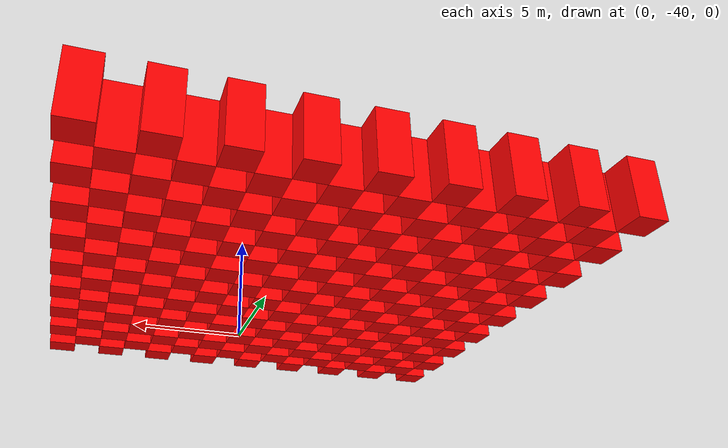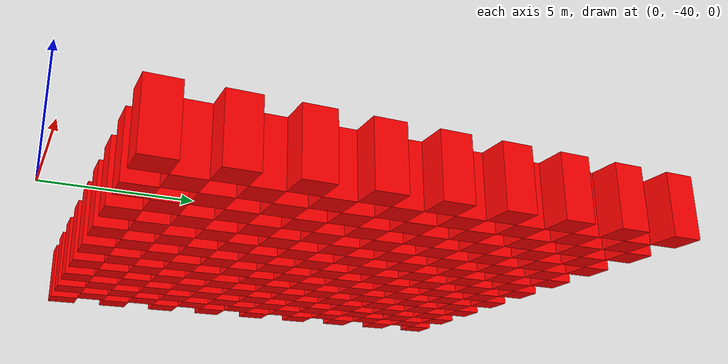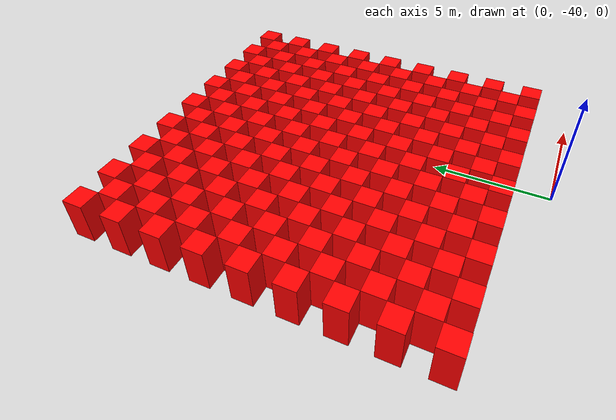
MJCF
<mujoco model="random_box_terrain">
    <compiler angle="degree" coordinate="local"/>
    <option timestep="0.01" gravity="0 0 -9.81" integrator="RK4"/>

    <asset>
        <texture type="2d" name="Plastic006_color"      file="../../textures/Plastic006_2K-PNG/Plastic006_2K-PNG_Color.png"/>
        <texture type="2d" name="Plastic006_roughness"  file="../../textures/Plastic006_2K-PNG/Plastic006_2K-PNG_Roughness.png"/>
        <texture type="2d" name="Plastic006_normal"     file="../../textures/Plastic006_2K-PNG/Plastic006_2K-PNG_NormalDX.png"/>

        <material name="pbr_plastic_black" metallic ="0.05" roughness="1.0" rgba="1 0 0 1.0">
        <layer role="rgb"        texture="Plastic006_color"/>
        <layer role="normal"     texture="Plastic006_normal"/>
        <layer role="roughness"  texture="Plastic006_roughness"/>
        </material>

        <texture type="2d" name="Plastic013A_color"      file="../../textures/Plastic013A_2K-PNG/Plastic013A_2K-PNG_Color.png"/>
        <texture type="2d" name="Plastic013A_roughness"  file="../../textures/Plastic013A_2K-PNG/Plastic013A_2K-PNG_Roughness.png"/>
        <texture type="2d" name="Plastic013A_normal"     file="../../textures/Plastic013A_2K-PNG/Plastic013A_2K-PNG_NormalDX.png"/>

        <material name="pbr_plastic_white" metallic ="0.05" roughness="1.0" rgba="1 0 0 1.0">
        <layer role="rgb"        texture="Plastic013A_color"/>
        <layer role="normal"     texture="Plastic013A_normal"/>
        <layer role="roughness"  texture="Plastic013A_roughness"/>
        </material>

        <texture type="2d" name="Plastic010_color"      file="../../textures/Plastic010_2K-PNG/Plastic010_2K-PNG_Color.png"/>
        <texture type="2d" name="Plastic010_roughness"  file="../../textures/Plastic010_2K-PNG/Plastic010_2K-PNG_Roughness.png"/>
        <texture type="2d" name="Plastic010_normal"     file="../../textures/Plastic010_2K-PNG/Plastic010_2K-PNG_NormalDX.png"/>

        <material name="pbr_plastic_gray" metallic ="0.05" roughness="1.0" rgba="1 0 0 1.0">
        <layer role="rgb"        texture="Plastic010_color"/>
        <layer role="normal"     texture="Plastic010_normal"/>
        <layer role="roughness"  texture="Plastic010_roughness"/>
        </material>
    </asset>
    <worldbody>
        <body name="offset" pos="0 -30 0">
            <body name="terrain" pos="0 0 0.0">
                <geom type="box" pos="-8.0 -8.0 -1.0" size="0.5 0.5 1.025"   material="pbr_plastic_gray"/>
                <geom type="box" pos="-6.0 -8.0 -1.0" size="0.5 0.5 1.025"   material="pbr_plastic_white"/>
                <geom type="box" pos="-4.0 -8.0 -1.0" size="0.5 0.5 1.025"   material="pbr_plastic_gray"/>
                <geom type="box" pos="-2.0 -8.0 -1.0" size="0.5 0.5 1.025"   material="pbr_plastic_white"/>
                <geom type="box" pos="0.0 -8.0 -1.0" size="0.5 0.5 1.025"   material="pbr_plastic_gray"/>
                <geom type="box" pos="2.0 -8.0 -1.0" size="0.5 0.5 1.025"   material="pbr_plastic_white"/>
                <geom type="box" pos="4.0 -8.0 -1.0" size="0.5 0.5 1.025"   material="pbr_plastic_gray"/>
                <geom type="box" pos="6.0 -8.0 -1.0" size="0.5 0.5 1.025"   material="pbr_plastic_white"/>
                <geom type="box" pos="8.0 -8.0 -1.0" size="0.5 0.5 1.025"   material="pbr_plastic_gray"/>

                <geom type="box" pos="-7.0 -7.0 -1.0" size="0.5 0.5 1.025"   material="pbr_plastic_gray"/>
                <geom type="box" pos="-5.0 -7.0 -1.0" size="0.5 0.5 1.025"   material="pbr_plastic_white"/>
                <geom type="box" pos="-3.0 -7.0 -1.0" size="0.5 0.5 1.025"   material="pbr_plastic_gray"/>
                <geom type="box" pos="-1.0 -7.0 -1.0" size="0.5 0.5 1.025"   material="pbr_plastic_white"/>
                <geom type="box" pos="1.0 -7.0 -1.0" size="0.5 0.5 1.025"   material="pbr_plastic_gray"/>
                <geom type="box" pos="3.0 -7.0 -1.0" size="0.5 0.5 1.025"   material="pbr_plastic_white"/>
                <geom type="box" pos="5.0 -7.0 -1.0" size="0.5 0.5 1.025"   material="pbr_plastic_gray"/>
                <geom type="box" pos="7.0 -7.0 -1.0" size="0.5 0.5 1.025"   material="pbr_plastic_white"/>

                <geom type="box" pos="-8.0 -6.0 -1.0" size="0.5 0.5 1.025"   material="pbr_plastic_white"/>
                <geom type="box" pos="-6.0 -6.0 -1.0" size="0.5 0.5 1.025"   material="pbr_plastic_gray"/>
                <geom type="box" pos="-4.0 -6.0 -1.0" size="0.5 0.5 1.025"   material="pbr_plastic_white"/>
                <geom type="box" pos="-2.0 -6.0 -1.0" size="0.5 0.5 1.025"   material="pbr_plastic_gray"/>
                <geom type="box" pos="0.0 -6.0 -1.0" size="0.5 0.5 1.025"   material="pbr_plastic_white"/>
                <geom type="box" pos="2.0 -6.0 -1.0" size="0.5 0.5 1.025"   material="pbr_plastic_gray"/>
                <geom type="box" pos="4.0 -6.0 -1.0" size="0.5 0.5 1.025"   material="pbr_plastic_white"/>
                <geom type="box" pos="6.0 -6.0 -1.0" size="0.5 0.5 1.025"   material="pbr_plastic_gray"/>
                <geom type="box" pos="8.0 -6.0 -1.0" size="0.5 0.5 1.025"   material="pbr_plastic_white"/>

                <geom type="box" pos="-7.0 -5.0 -1.0" size="0.5 0.5 1.025"   material="pbr_plastic_gray"/>
                <geom type="box" pos="-5.0 -5.0 -1.0" size="0.5 0.5 1.025"   material="pbr_plastic_white"/>
                <geom type="box" pos="-3.0 -5.0 -1.0" size="0.5 0.5 1.025"   material="pbr_plastic_gray"/>
                <geom type="box" pos="-1.0 -5.0 -1.0" size="0.5 0.5 1.025"   material="pbr_plastic_white"/>
                <geom type="box" pos="1.0 -5.0 -1.0" size="0.5 0.5 1.025"   material="pbr_plastic_gray"/>
                <geom type="box" pos="3.0 -5.0 -1.0" size="0.5 0.5 1.025"   material="pbr_plastic_white"/>
                <geom type="box" pos="5.0 -5.0 -1.0" size="0.5 0.5 1.025"   material="pbr_plastic_gray"/>
                <geom type="box" pos="7.0 -5.0 -1.0" size="0.5 0.5 1.025"   material="pbr_plastic_white"/>

                <geom type="box" pos="-8.0 -4.0 -1.0" size="0.5 0.5 1.025"   material="pbr_plastic_white"/>
                <geom type="box" pos="-6.0 -4.0 -1.0" size="0.5 0.5 1.025"   material="pbr_plastic_gray"/>
                <geom type="box" pos="-4.0 -4.0 -1.0" size="0.5 0.5 1.025"   material="pbr_plastic_white"/>
                <geom type="box" pos="-2.0 -4.0 -1.0" size="0.5 0.5 1.025"   material="pbr_plastic_gray"/>
                <geom type="box" pos="0.0 -4.0 -1.0" size="0.5 0.5 1.025"   material="pbr_plastic_white"/>
                <geom type="box" pos="2.0 -4.0 -1.0" size="0.5 0.5 1.025"   material="pbr_plastic_gray"/>
                <geom type="box" pos="4.0 -4.0 -1.0" size="0.5 0.5 1.025"   material="pbr_plastic_white"/>
                <geom type="box" pos="6.0 -4.0 -1.0" size="0.5 0.5 1.025"   material="pbr_plastic_gray"/>
                <geom type="box" pos="8.0 -4.0 -1.0" size="0.5 0.5 1.025"   material="pbr_plastic_white"/>

                <geom type="box" pos="-7.0 -3.0 -1.0" size="0.5 0.5 1.025"   material="pbr_plastic_gray"/>
                <geom type="box" pos="-5.0 -3.0 -1.0" size="0.5 0.5 1.025"   material="pbr_plastic_white"/>
                <geom type="box" pos="-3.0 -3.0 -1.0" size="0.5 0.5 1.025"   material="pbr_plastic_gray"/>
                <geom type="box" pos="-1.0 -3.0 -1.0" size="0.5 0.5 1.025"   material="pbr_plastic_white"/>
                <geom type="box" pos="1.0 -3.0 -1.0" size="0.5 0.5 1.025"   material="pbr_plastic_gray"/>
                <geom type="box" pos="3.0 -3.0 -1.0" size="0.5 0.5 1.025"   material="pbr_plastic_white"/>
                <geom type="box" pos="5.0 -3.0 -1.0" size="0.5 0.5 1.025"   material="pbr_plastic_gray"/>
                <geom type="box" pos="7.0 -3.0 -1.0" size="0.5 0.5 1.025"   material="pbr_plastic_white"/>

                <geom type="box" pos="-8.0 -2.0 -1.0" size="0.5 0.5 1.025"   material="pbr_plastic_white"/>
                <geom type="box" pos="-6.0 -2.0 -1.0" size="0.5 0.5 1.025"   material="pbr_plastic_gray"/>
                <geom type="box" pos="-4.0 -2.0 -1.0" size="0.5 0.5 1.025"   material="pbr_plastic_white"/>
                <geom type="box" pos="-2.0 -2.0 -1.0" size="0.5 0.5 1.025"   material="pbr_plastic_gray"/>
                <geom type="box" pos="0.0 -2.0 -1.0" size="0.5 0.5 1.025"   material="pbr_plastic_white"/>
                <geom type="box" pos="2.0 -2.0 -1.0" size="0.5 0.5 1.025"   material="pbr_plastic_gray"/>
                <geom type="box" pos="4.0 -2.0 -1.0" size="0.5 0.5 1.025"   material="pbr_plastic_white"/>
                <geom type="box" pos="6.0 -2.0 -1.0" size="0.5 0.5 1.025"   material="pbr_plastic_gray"/>
                <geom type="box" pos="8.0 -2.0 -1.0" size="0.5 0.5 1.025"   material="pbr_plastic_white"/>

                <geom type="box" pos="-7.0 -1.0 -1.0" size="0.5 0.5 1.025"   material="pbr_plastic_gray"/>
                <geom type="box" pos="-5.0 -1.0 -1.0" size="0.5 0.5 1.025"   material="pbr_plastic_white"/>
                <geom type="box" pos="-3.0 -1.0 -1.0" size="0.5 0.5 1.025"   material="pbr_plastic_gray"/>
                <geom type="box" pos="-1.0 -1.0 -1.0" size="0.5 0.5 1.025"   material="pbr_plastic_white"/>
                <geom type="box" pos="1.0 -1.0 -1.0" size="0.5 0.5 1.025"   material="pbr_plastic_gray"/>
                <geom type="box" pos="3.0 -1.0 -1.0" size="0.5 0.5 1.025"   material="pbr_plastic_white"/>
                <geom type="box" pos="5.0 -1.0 -1.0" size="0.5 0.5 1.025"   material="pbr_plastic_gray"/>
                <geom type="box" pos="7.0 -1.0 -1.0" size="0.5 0.5 1.025"   material="pbr_plastic_white"/>

                <geom type="box" pos="-8.0 0.0 -1.0" size="0.5 0.5 1.025"   material="pbr_plastic_white"/>
                <geom type="box" pos="-6.0 0.0 -1.0" size="0.5 0.5 1.025"   material="pbr_plastic_gray"/>
                <geom type="box" pos="-4.0 0.0 -1.0" size="0.5 0.5 1.025"   material="pbr_plastic_white"/>
                <geom type="box" pos="-2.0 0.0 -1.0" size="0.5 0.5 1.025"   material="pbr_plastic_gray"/>
                <geom type="box" pos="0.0 0.0 -1.0" size="0.5 0.5 1.025"   material="pbr_plastic_white"/>
                <geom type="box" pos="2.0 0.0 -1.0" size="0.5 0.5 1.025"   material="pbr_plastic_gray"/>
                <geom type="box" pos="4.0 0.0 -1.0" size="0.5 0.5 1.025"   material="pbr_plastic_white"/>
                <geom type="box" pos="6.0 0.0 -1.0" size="0.5 0.5 1.025"   material="pbr_plastic_gray"/>
                <geom type="box" pos="8.0 0.0 -1.0" size="0.5 0.5 1.025"   material="pbr_plastic_white"/>

                <geom type="box" pos="-7.0 1.0 -1.0" size="0.5 0.5 1.025"   material="pbr_plastic_gray"/>
                <geom type="box" pos="-5.0 1.0 -1.0" size="0.5 0.5 1.025"   material="pbr_plastic_white"/>
                <geom type="box" pos="-3.0 1.0 -1.0" size="0.5 0.5 1.025"   material="pbr_plastic_gray"/>
                <geom type="box" pos="-1.0 1.0 -1.0" size="0.5 0.5 1.025"   material="pbr_plastic_white"/>
                <geom type="box" pos="1.0 1.0 -1.0" size="0.5 0.5 1.025"   material="pbr_plastic_gray"/>
                <geom type="box" pos="3.0 1.0 -1.0" size="0.5 0.5 1.025"   material="pbr_plastic_white"/>
                <geom type="box" pos="5.0 1.0 -1.0" size="0.5 0.5 1.025"   material="pbr_plastic_gray"/>
                <geom type="box" pos="7.0 1.0 -1.0" size="0.5 0.5 1.025"   material="pbr_plastic_white"/>

                <geom type="box" pos="-8.0 2.0 -1.0" size="0.5 0.5 1.025"   material="pbr_plastic_white"/>
                <geom type="box" pos="-6.0 2.0 -1.0" size="0.5 0.5 1.025"   material="pbr_plastic_gray"/>
                <geom type="box" pos="-4.0 2.0 -1.0" size="0.5 0.5 1.025"   material="pbr_plastic_white"/>
                <geom type="box" pos="-2.0 2.0 -1.0" size="0.5 0.5 1.025"   material="pbr_plastic_gray"/>
                <geom type="box" pos="0.0 2.0 -1.0" size="0.5 0.5 1.025"   material="pbr_plastic_white"/>
                <geom type="box" pos="2.0 2.0 -1.0" size="0.5 0.5 1.025"   material="pbr_plastic_gray"/>
                <geom type="box" pos="4.0 2.0 -1.0" size="0.5 0.5 1.025"   material="pbr_plastic_white"/>
                <geom type="box" pos="6.0 2.0 -1.0" size="0.5 0.5 1.025"   material="pbr_plastic_gray"/>
                <geom type="box" pos="8.0 2.0 -1.0" size="0.5 0.5 1.025"   material="pbr_plastic_white"/>

                <geom type="box" pos="-7.0 3.0 -1.0" size="0.5 0.5 1.025"   material="pbr_plastic_gray"/>
                <geom type="box" pos="-5.0 3.0 -1.0" size="0.5 0.5 1.025"   material="pbr_plastic_white"/>
                <geom type="box" pos="-3.0 3.0 -1.0" size="0.5 0.5 1.025"   material="pbr_plastic_gray"/>
                <geom type="box" pos="-1.0 3.0 -1.0" size="0.5 0.5 1.025"   material="pbr_plastic_white"/>
                <geom type="box" pos="1.0 3.0 -1.0" size="0.5 0.5 1.025"   material="pbr_plastic_gray"/>
                <geom type="box" pos="3.0 3.0 -1.0" size="0.5 0.5 1.025"   material="pbr_plastic_white"/>
                <geom type="box" pos="5.0 3.0 -1.0" size="0.5 0.5 1.025"   material="pbr_plastic_gray"/>
                <geom type="box" pos="7.0 3.0 -1.0" size="0.5 0.5 1.025"   material="pbr_plastic_white"/>

                <geom type="box" pos="-8.0 4.0 -1.0" size="0.5 0.5 1.025"   material="pbr_plastic_white"/>
                <geom type="box" pos="-6.0 4.0 -1.0" size="0.5 0.5 1.025"   material="pbr_plastic_gray"/>
                <geom type="box" pos="-4.0 4.0 -1.0" size="0.5 0.5 1.025"   material="pbr_plastic_white"/>
                <geom type="box" pos="-2.0 4.0 -1.0" size="0.5 0.5 1.025"   material="pbr_plastic_gray"/>
                <geom type="box" pos="0.0 4.0 -1.0" size="0.5 0.5 1.025"   material="pbr_plastic_white"/>
                <geom type="box" pos="2.0 4.0 -1.0" size="0.5 0.5 1.025"   material="pbr_plastic_gray"/>
                <geom type="box" pos="4.0 4.0 -1.0" size="0.5 0.5 1.025"   material="pbr_plastic_white"/>
                <geom type="box" pos="6.0 4.0 -1.0" size="0.5 0.5 1.025"   material="pbr_plastic_gray"/>
                <geom type="box" pos="8.0 4.0 -1.0" size="0.5 0.5 1.025"   material="pbr_plastic_white"/>

                <geom type="box" pos="-7.0 5.0 -1.0" size="0.5 0.5 1.025"   material="pbr_plastic_gray"/>
                <geom type="box" pos="-5.0 5.0 -1.0" size="0.5 0.5 1.025"   material="pbr_plastic_white"/>
                <geom type="box" pos="-3.0 5.0 -1.0" size="0.5 0.5 1.025"   material="pbr_plastic_gray"/>
                <geom type="box" pos="-1.0 5.0 -1.0" size="0.5 0.5 1.025"   material="pbr_plastic_white"/>
                <geom type="box" pos="1.0 5.0 -1.0" size="0.5 0.5 1.025"   material="pbr_plastic_gray"/>
                <geom type="box" pos="3.0 5.0 -1.0" size="0.5 0.5 1.025"   material="pbr_plastic_white"/>
                <geom type="box" pos="5.0 5.0 -1.0" size="0.5 0.5 1.025"   material="pbr_plastic_gray"/>
                <geom type="box" pos="7.0 5.0 -1.0" size="0.5 0.5 1.025"   material="pbr_plastic_white"/>

                <geom type="box" pos="-8.0 6.0 -1.0" size="0.5 0.5 1.025"   material="pbr_plastic_white"/>
                <geom type="box" pos="-6.0 6.0 -1.0" size="0.5 0.5 1.025"   material="pbr_plastic_gray"/>
                <geom type="box" pos="-4.0 6.0 -1.0" size="0.5 0.5 1.025"   material="pbr_plastic_white"/>
                <geom type="box" pos="-2.0 6.0 -1.0" size="0.5 0.5 1.025"   material="pbr_plastic_gray"/>
                <geom type="box" pos="0.0 6.0 -1.0" size="0.5 0.5 1.025"   material="pbr_plastic_white"/>
                <geom type="box" pos="2.0 6.0 -1.0" size="0.5 0.5 1.025"   material="pbr_plastic_gray"/>
                <geom type="box" pos="4.0 6.0 -1.0" size="0.5 0.5 1.025"   material="pbr_plastic_white"/>
                <geom type="box" pos="6.0 6.0 -1.0" size="0.5 0.5 1.025"   material="pbr_plastic_gray"/>
                <geom type="box" pos="8.0 6.0 -1.0" size="0.5 0.5 1.025"   material="pbr_plastic_white"/>

                <geom type="box" pos="-7.0 7.0 -1.0" size="0.5 0.5 1.025"   material="pbr_plastic_gray"/>
                <geom type="box" pos="-5.0 7.0 -1.0" size="0.5 0.5 1.025"   material="pbr_plastic_white"/>
                <geom type="box" pos="-3.0 7.0 -1.0" size="0.5 0.5 1.025"   material="pbr_plastic_gray"/>
                <geom type="box" pos="-1.0 7.0 -1.0" size="0.5 0.5 1.025"   material="pbr_plastic_white"/>
                <geom type="box" pos="1.0 7.0 -1.0" size="0.5 0.5 1.025"   material="pbr_plastic_gray"/>
                <geom type="box" pos="3.0 7.0 -1.0" size="0.5 0.5 1.025"   material="pbr_plastic_white"/>
                <geom type="box" pos="5.0 7.0 -1.0" size="0.5 0.5 1.025"   material="pbr_plastic_gray"/>
                <geom type="box" pos="7.0 7.0 -1.0" size="0.5 0.5 1.025"   material="pbr_plastic_white"/>

                <geom type="box" pos="-8.0 8.0 -1.0" size="0.5 0.5 1.025"   material="pbr_plastic_white"/>
                <geom type="box" pos="-6.0 8.0 -1.0" size="0.5 0.5 1.025"   material="pbr_plastic_gray"/>
                <geom type="box" pos="-4.0 8.0 -1.0" size="0.5 0.5 1.025"   material="pbr_plastic_white"/>
                <geom type="box" pos="-2.0 8.0 -1.0" size="0.5 0.5 1.025"   material="pbr_plastic_gray"/>
                <geom type="box" pos="0.0 8.0 -1.0" size="0.5 0.5 1.025"   material="pbr_plastic_white"/>
                <geom type="box" pos="2.0 8.0 -1.0" size="0.5 0.5 1.025"   material="pbr_plastic_gray"/>
                <geom type="box" pos="4.0 8.0 -1.0" size="0.5 0.5 1.025"   material="pbr_plastic_white"/>
                <geom type="box" pos="6.0 8.0 -1.0" size="0.5 0.5 1.025"   material="pbr_plastic_gray"/>
                <geom type="box" pos="8.0 8.0 -1.0" size="0.5 0.5 1.025"   material="pbr_plastic_white"/>
            </body>
        </body>
    </worldbody>

    <actuator>
        <!-- 在这里你可以定义一些控制器 -->
    </actuator>

</mujoco>
